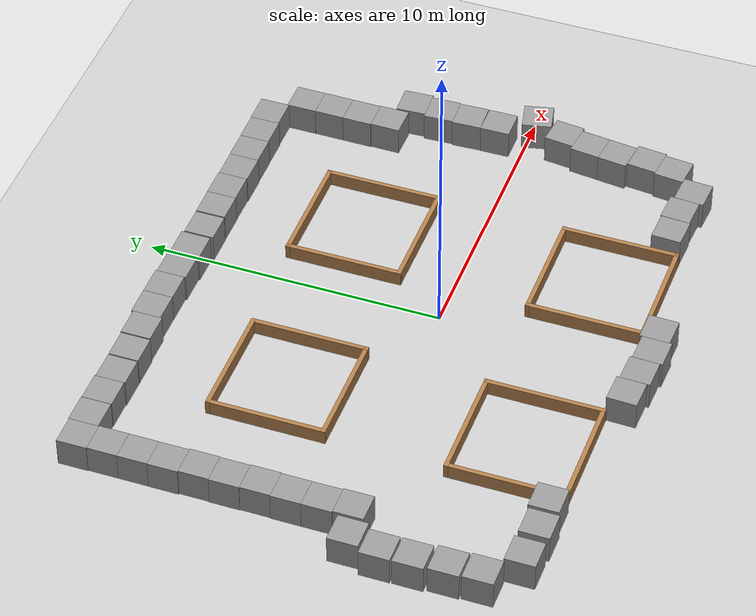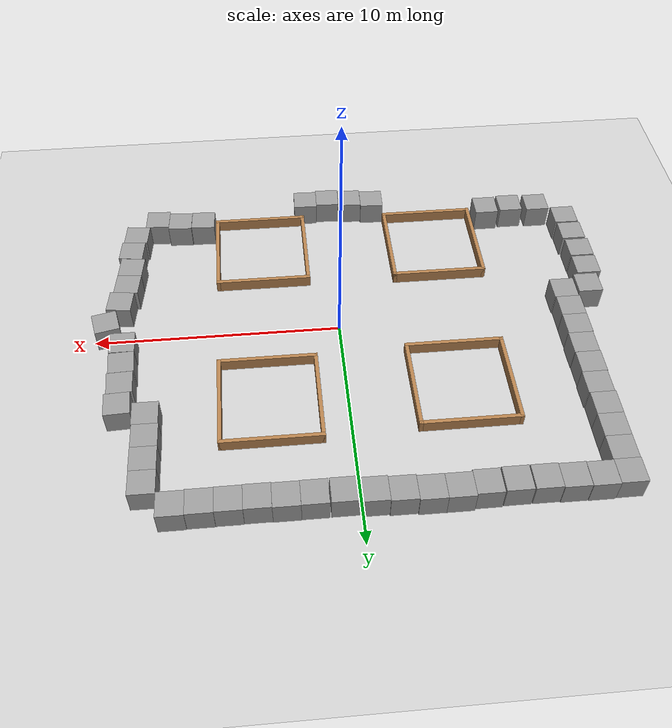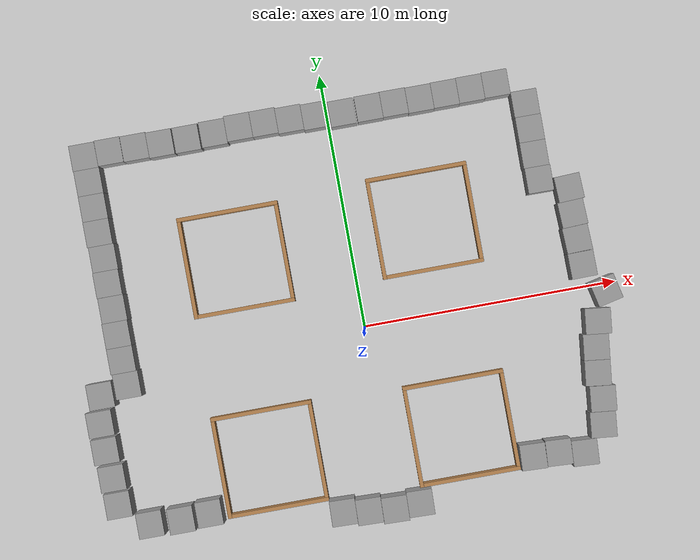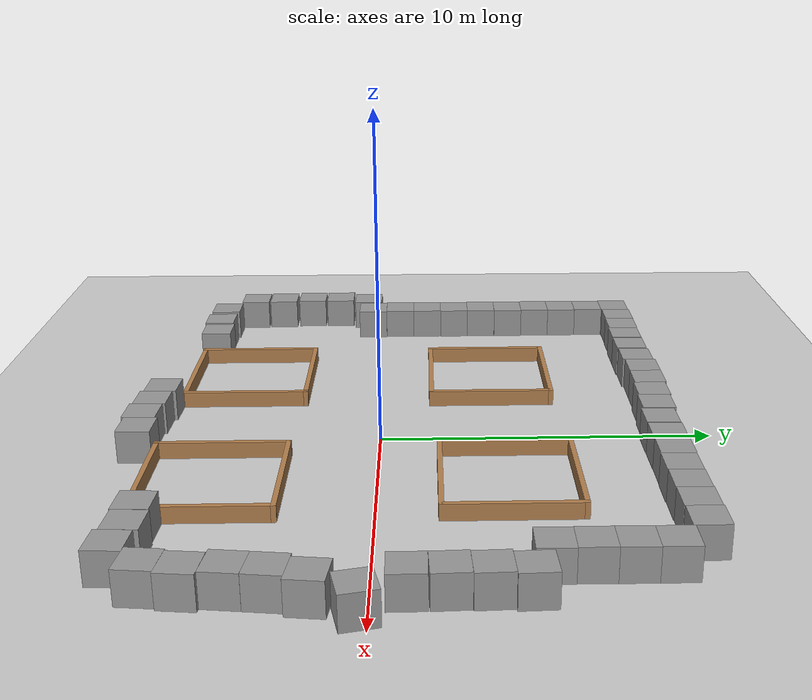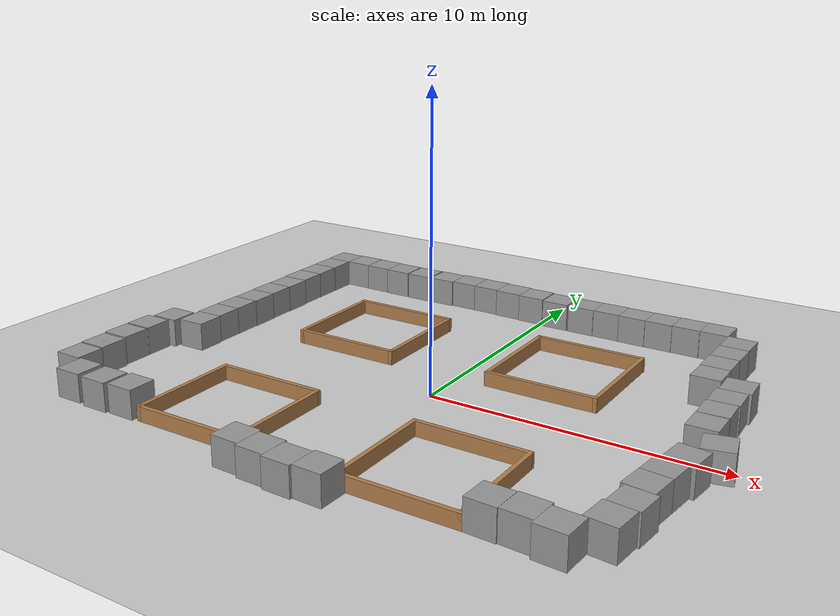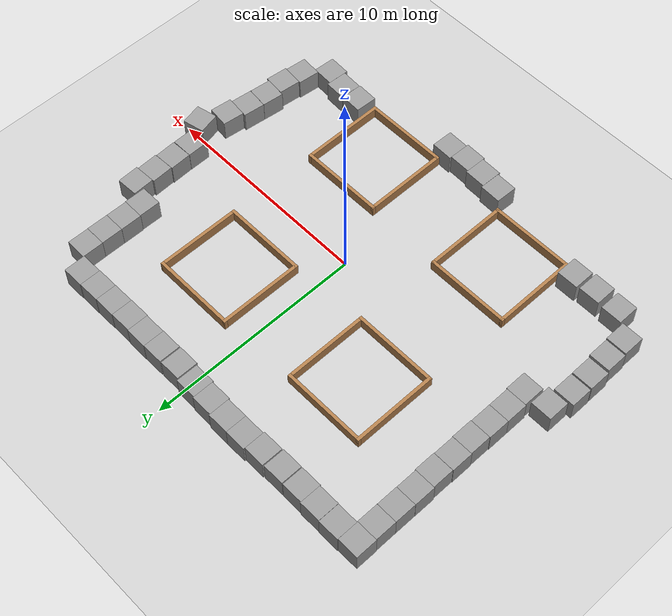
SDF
<sdf version="1.7">
 <world name="default">
  <light name="sun" type="directional">
   <pose>0 0 10 0 -0 0</pose>
   <diffuse>0.8 0.8 0.8 1</diffuse>
   <specular>0.2 0.2 0.2 1</specular>
   <attenuation>
    <range>1000</range>
    <constant>0.9</constant>
    <linear>0.01</linear>
    <quadratic>0.001</quadratic>
   </attenuation>
   <direction>-0.5 0.1 -0.9</direction>
   <spot><inner_angle>0</inner_angle><outer_angle>0</outer_angle><falloff>0</falloff></spot>
  </light>
  <model name="ground_plane">
   <static>1</static>
   <link name="link">
    <collision name="collision">
     <geometry><plane><normal>0 0 1</normal><size>100 100</size></plane></geometry>
     <surface>
      <contact><collide_bitmask>65535</collide_bitmask></contact>
      <friction><ode><mu>100</mu><mu2>50</mu2></ode></friction>
     </surface>
    </collision>
    <visual name="visual">
     <cast_shadows>0</cast_shadows>
     <geometry><plane><normal>0 0 1</normal><size>100 100</size></plane></geometry>
     <material>
      <script><uri>file://media/materials/scripts/gazebo.material</uri><name>Gazebo/Grey</name></script>
     </material>
    </visual>
   </link>
  </model>
  <gravity>0 0 -9.8</gravity>
  <magnetic_field>6e-06 2.3e-05 -4.2e-05</magnetic_field>
  <atmosphere type="adiabatic"/>
  <physics type="ode">
   <max_step_size>0.001</max_step_size>
   <real_time_factor>1</real_time_factor>
   <real_time_update_rate>1000</real_time_update_rate>
  </physics>
  <scene><ambient>0.4 0.4 0.4 1</ambient><background>0.7 0.7 0.7 1</background><shadows>1</shadows></scene>
  <spherical_coordinates>
   <surface_model>EARTH_WGS84</surface_model>
   <latitude_deg>0</latitude_deg>
   <longitude_deg>0</longitude_deg>
   <elevation>0</elevation>
   <heading_deg>0</heading_deg>
  </spherical_coordinates>
  <model name="turtlebot3_square">
   <pose>-4.49109 3.48064 0 0 -0 0</pose>
   <link name="Wall_0">
    <collision name="Wall_0_Collision">
     <geometry><box><size>4 0.15 0.5</size></box></geometry>
     <pose>0 0 0.25 0 -0 0</pose>
    </collision>
    <visual name="Wall_0_Visual">
     <pose>0 0 0.25 0 -0 0</pose>
     <geometry><box><size>4 0.15 0.5</size></box></geometry>
     <material>
      <script><uri>file://media/materials/scripts/gazebo.material</uri><name>Gazebo/Wood</name></script>
      <ambient>1 1 1 1</ambient>
     </material>
    </visual>
    <pose>0 1.925 0 0 -0 0</pose>
   </link>
   <link name="Wall_2">
    <collision name="Wall_2_Collision">
     <geometry><box><size>4 0.15 0.5</size></box></geometry>
     <pose>0 0 0.25 0 -0 0</pose>
    </collision>
    <visual name="Wall_2_Visual">
     <pose>0 0 0.25 0 -0 0</pose>
     <geometry><box><size>4 0.15 0.5</size></box></geometry>
     <material>
      <script><uri>file://media/materials/scripts/gazebo.material</uri><name>Gazebo/Wood</name></script>
      <ambient>1 1 1 1</ambient>
     </material>
    </visual>
    <pose>-1.925 0 0 0 0 -1.5708</pose>
   </link>
   <link name="Wall_3">
    <collision name="Wall_3_Collision">
     <geometry><box><size>4 0.15 0.5</size></box></geometry>
     <pose>0 0 0.25 0 -0 0</pose>
    </collision>
    <visual name="Wall_3_Visual">
     <pose>0 0 0.25 0 -0 0</pose>
     <geometry><box><size>4 0.15 0.5</size></box></geometry>
     <material>
      <script><uri>file://media/materials/scripts/gazebo.material</uri><name>Gazebo/Wood</name></script>
      <ambient>1 1 1 1</ambient>
     </material>
    </visual>
    <pose>0 -1.925 0 0 -0 0</pose>
   </link>
   <link name="Wall_4">
    <collision name="Wall_4_Collision">
     <geometry><box><size>4 0.15 0.5</size></box></geometry>
     <pose>0 0 0.25 0 -0 0</pose>
    </collision>
    <visual name="Wall_4_Visual">
     <pose>0 0 0.25 0 -0 0</pose>
     <geometry><box><size>4 0.15 0.5</size></box></geometry>
     <material>
      <script><uri>file://media/materials/scripts/gazebo.material</uri><name>Gazebo/Wood</name></script>
      <ambient>1 1 1 1</ambient>
     </material>
    </visual>
    <pose>1.925 0 0 0 -0 1.5708</pose>
   </link>
   <static>1</static>
  </model>
  <model name="turtlebot3_square_0">
   <pose>-4.58319 -4.41741 0 0 -0 0</pose>
   <link name="Wall_0">
    <collision name="Wall_0_Collision">
     <geometry><box><size>4 0.15 0.5</size></box></geometry>
     <pose>0 0 0.25 0 -0 0</pose>
    </collision>
    <visual name="Wall_0_Visual">
     <pose>0 0 0.25 0 -0 0</pose>
     <geometry><box><size>4 0.15 0.5</size></box></geometry>
     <material>
      <script><uri>file://media/materials/scripts/gazebo.material</uri><name>Gazebo/Wood</name></script>
      <ambient>1 1 1 1</ambient>
     </material>
    </visual>
    <pose>0 1.925 0 0 -0 0</pose>
   </link>
   <link name="Wall_2">
    <collision name="Wall_2_Collision">
     <geometry><box><size>4 0.15 0.5</size></box></geometry>
     <pose>0 0 0.25 0 -0 0</pose>
    </collision>
    <visual name="Wall_2_Visual">
     <pose>0 0 0.25 0 -0 0</pose>
     <geometry><box><size>4 0.15 0.5</size></box></geometry>
     <material>
      <script><uri>file://media/materials/scripts/gazebo.material</uri><name>Gazebo/Wood</name></script>
      <ambient>1 1 1 1</ambient>
     </material>
    </visual>
    <pose>-1.925 0 0 0 0 -1.5708</pose>
   </link>
   <link name="Wall_3">
    <collision name="Wall_3_Collision">
     <geometry><box><size>4 0.15 0.5</size></box></geometry>
     <pose>0 0 0.25 0 -0 0</pose>
    </collision>
    <visual name="Wall_3_Visual">
     <pose>0 0 0.25 0 -0 0</pose>
     <geometry><box><size>4 0.15 0.5</size></box></geometry>
     <material>
      <script><uri>file://media/materials/scripts/gazebo.material</uri><name>Gazebo/Wood</name></script>
      <ambient>1 1 1 1</ambient>
     </material>
    </visual>
    <pose>0 -1.925 0 0 -0 0</pose>
   </link>
   <link name="Wall_4">
    <collision name="Wall_4_Collision">
     <geometry><box><size>4 0.15 0.5</size></box></geometry>
     <pose>0 0 0.25 0 -0 0</pose>
    </collision>
    <visual name="Wall_4_Visual">
     <pose>0 0 0.25 0 -0 0</pose>
     <geometry><box><size>4 0.15 0.5</size></box></geometry>
     <material>
      <script><uri>file://media/materials/scripts/gazebo.material</uri><name>Gazebo/Wood</name></script>
      <ambient>1 1 1 1</ambient>
     </material>
    </visual>
    <pose>1.925 0 0 0 -0 1.5708</pose>
   </link>
   <static>1</static>
  </model>
  <model name="turtlebot3_square_1">
   <pose>3.00071 -4.56485 0 0 -0 0</pose>
   <link name="Wall_0">
    <collision name="Wall_0_Collision">
     <geometry><box><size>4 0.15 0.5</size></box></geometry>
     <pose>0 0 0.25 0 -0 0</pose>
    </collision>
    <visual name="Wall_0_Visual">
     <pose>0 0 0.25 0 -0 0</pose>
     <geometry><box><size>4 0.15 0.5</size></box></geometry>
     <material>
      <script><uri>file://media/materials/scripts/gazebo.material</uri><name>Gazebo/Wood</name></script>
      <ambient>1 1 1 1</ambient>
     </material>
    </visual>
    <pose>0 1.925 0 0 -0 0</pose>
   </link>
   <link name="Wall_2">
    <collision name="Wall_2_Collision">
     <geometry><box><size>4 0.15 0.5</size></box></geometry>
     <pose>0 0 0.25 0 -0 0</pose>
    </collision>
    <visual name="Wall_2_Visual">
     <pose>0 0 0.25 0 -0 0</pose>
     <geometry><box><size>4 0.15 0.5</size></box></geometry>
     <material>
      <script><uri>file://media/materials/scripts/gazebo.material</uri><name>Gazebo/Wood</name></script>
      <ambient>1 1 1 1</ambient>
     </material>
    </visual>
    <pose>-1.925 0 0 0 0 -1.5708</pose>
   </link>
   <link name="Wall_3">
    <collision name="Wall_3_Collision">
     <geometry><box><size>4 0.15 0.5</size></box></geometry>
     <pose>0 0 0.25 0 -0 0</pose>
    </collision>
    <visual name="Wall_3_Visual">
     <pose>0 0 0.25 0 -0 0</pose>
     <geometry><box><size>4 0.15 0.5</size></box></geometry>
     <material>
      <script><uri>file://media/materials/scripts/gazebo.material</uri><name>Gazebo/Wood</name></script>
      <ambient>1 1 1 1</ambient>
     </material>
    </visual>
    <pose>0 -1.925 0 0 -0 0</pose>
   </link>
   <link name="Wall_4">
    <collision name="Wall_4_Collision">
     <geometry><box><size>4 0.15 0.5</size></box></geometry>
     <pose>0 0 0.25 0 -0 0</pose>
    </collision>
    <visual name="Wall_4_Visual">
     <pose>0 0 0.25 0 -0 0</pose>
     <geometry><box><size>4 0.15 0.5</size></box></geometry>
     <material>
      <script><uri>file://media/materials/scripts/gazebo.material</uri><name>Gazebo/Wood</name></script>
      <ambient>1 1 1 1</ambient>
     </material>
    </visual>
    <pose>1.925 0 0 0 -0 1.5708</pose>
   </link>
   <static>1</static>
  </model>
  <model name="turtlebot3_square_2">
   <pose>3.03425 3.67945 0 0 -0 0</pose>
   <link name="Wall_0">
    <collision name="Wall_0_Collision">
     <geometry><box><size>4 0.15 0.5</size></box></geometry>
     <pose>0 0 0.25 0 -0 0</pose>
    </collision>
    <visual name="Wall_0_Visual">
     <pose>0 0 0.25 0 -0 0</pose>
     <geometry><box><size>4 0.15 0.5</size></box></geometry>
     <material>
      <script><uri>file://media/materials/scripts/gazebo.material</uri><name>Gazebo/Wood</name></script>
      <ambient>1 1 1 1</ambient>
     </material>
    </visual>
    <pose>0 1.925 0 0 -0 0</pose>
   </link>
   <link name="Wall_2">
    <collision name="Wall_2_Collision">
     <geometry><box><size>4 0.15 0.5</size></box></geometry>
     <pose>0 0 0.25 0 -0 0</pose>
    </collision>
    <visual name="Wall_2_Visual">
     <pose>0 0 0.25 0 -0 0</pose>
     <geometry><box><size>4 0.15 0.5</size></box></geometry>
     <material>
      <script><uri>file://media/materials/scripts/gazebo.material</uri><name>Gazebo/Wood</name></script>
      <ambient>1 1 1 1</ambient>
     </material>
    </visual>
    <pose>-1.925 0 0 0 0 -1.5708</pose>
   </link>
   <link name="Wall_3">
    <collision name="Wall_3_Collision">
     <geometry><box><size>4 0.15 0.5</size></box></geometry>
     <pose>0 0 0.25 0 -0 0</pose>
    </collision>
    <visual name="Wall_3_Visual">
     <pose>0 0 0.25 0 -0 0</pose>
     <geometry><box><size>4 0.15 0.5</size></box></geometry>
     <material>
      <script><uri>file://media/materials/scripts/gazebo.material</uri><name>Gazebo/Wood</name></script>
      <ambient>1 1 1 1</ambient>
     </material>
    </visual>
    <pose>0 -1.925 0 0 -0 0</pose>
   </link>
   <link name="Wall_4">
    <collision name="Wall_4_Collision">
     <geometry><box><size>4 0.15 0.5</size></box></geometry>
     <pose>0 0 0.25 0 -0 0</pose>
    </collision>
    <visual name="Wall_4_Visual">
     <pose>0 0 0.25 0 -0 0</pose>
     <geometry><box><size>4 0.15 0.5</size></box></geometry>
     <material>
      <script><uri>file://media/materials/scripts/gazebo.material</uri><name>Gazebo/Wood</name></script>
      <ambient>1 1 1 1</ambient>
     </material>
    </visual>
    <pose>1.925 0 0 0 -0 1.5708</pose>
   </link>
   <static>1</static>
  </model>
  <model name="unit_box">
   <pose>-9.45615 -0.553676 0.499995 -0 -1e-05 -0.000567</pose>
   <link name="link">
    <inertial>
     <mass>1</mass>
     <inertia>
      <ixx>0.166667</ixx>
      <ixy>0</ixy>
      <ixz>0</ixz>
      <iyy>0.166667</iyy>
      <iyz>0</iyz>
      <izz>0.166667</izz>
     </inertia>
    </inertial>
    <collision name="collision"><geometry><box><size>1 1 1</size></box></geometry></collision>
    <visual name="visual">
     <geometry><box><size>1 1 1</size></box></geometry>
     <material>
      <script><name>Gazebo/Grey</name><uri>file://media/materials/scripts/gazebo.material</uri></script>
     </material>
    </visual>
   </link>
  </model>
  <model name="unit_box_clone">
   <pose>-9.496 0.44669 0.499995 -1e-05 -0 0.000129</pose>
   <link name="link">
    <inertial>
     <mass>1</mass>
     <inertia>
      <ixx>0.166667</ixx>
      <ixy>0</ixy>
      <ixz>0</ixz>
      <iyy>0.166667</iyy>
      <iyz>0</iyz>
      <izz>0.166667</izz>
     </inertia>
    </inertial>
    <collision name="collision"><geometry><box><size>1 1 1</size></box></geometry></collision>
    <visual name="visual">
     <geometry><box><size>1 1 1</size></box></geometry>
     <material>
      <script><name>Gazebo/Grey</name><uri>file://media/materials/scripts/gazebo.material</uri></script>
     </material>
    </visual>
   </link>
  </model>
  <model name="unit_box_clone_0">
   <pose>-9.49586 1.44679 0.499995 1e-05 -0 0.000338</pose>
   <link name="link">
    <inertial>
     <mass>1</mass>
     <inertia>
      <ixx>0.166667</ixx>
      <ixy>0</ixy>
      <ixz>0</ixz>
      <iyy>0.166667</iyy>
      <iyz>0</iyz>
      <izz>0.166667</izz>
     </inertia>
    </inertial>
    <collision name="collision"><geometry><box><size>1 1 1</size></box></geometry></collision>
    <visual name="visual">
     <geometry><box><size>1 1 1</size></box></geometry>
     <material>
      <script><name>Gazebo/Grey</name><uri>file://media/materials/scripts/gazebo.material</uri></script>
     </material>
    </visual>
   </link>
  </model>
  <model name="unit_box_clone_1">
   <pose>-9.47583 2.44682 0.499995 1e-05 -0 0.000301</pose>
   <link name="link">
    <inertial>
     <mass>1</mass>
     <inertia>
      <ixx>0.166667</ixx>
      <ixy>0</ixy>
      <ixz>0</ixz>
      <iyy>0.166667</iyy>
      <iyz>0</iyz>
      <izz>0.166667</izz>
     </inertia>
    </inertial>
    <collision name="collision"><geometry><box><size>1 1 1</size></box></geometry></collision>
    <visual name="visual">
     <geometry><box><size>1 1 1</size></box></geometry>
     <material>
      <script><name>Gazebo/Grey</name><uri>file://media/materials/scripts/gazebo.material</uri></script>
     </material>
    </visual>
   </link>
  </model>
  <model name="unit_box_clone_2">
   <pose>-9.49419 3.44709 0.499995 -1e-05 0 0.000411</pose>
   <link name="link">
    <inertial>
     <mass>1</mass>
     <inertia>
      <ixx>0.166667</ixx>
      <ixy>0</ixy>
      <ixz>0</ixz>
      <iyy>0.166667</iyy>
      <iyz>0</iyz>
      <izz>0.166667</izz>
     </inertia>
    </inertial>
    <collision name="collision"><geometry><box><size>1 1 1</size></box></geometry></collision>
    <visual name="visual">
     <geometry><box><size>1 1 1</size></box></geometry>
     <material>
      <script><name>Gazebo/Grey</name><uri>file://media/materials/scripts/gazebo.material</uri></script>
     </material>
    </visual>
   </link>
  </model>
  <model name="unit_box_clone_3">
   <pose>-9.4758 4.44757 0.499995 -0 -1e-05 0.000716</pose>
   <link name="link">
    <inertial>
     <mass>1</mass>
     <inertia>
      <ixx>0.166667</ixx>
      <ixy>0</ixy>
      <ixz>0</ixz>
      <iyy>0.166667</iyy>
      <iyz>0</iyz>
      <izz>0.166667</izz>
     </inertia>
    </inertial>
    <collision name="collision"><geometry><box><size>1 1 1</size></box></geometry></collision>
    <visual name="visual">
     <geometry><box><size>1 1 1</size></box></geometry>
     <material>
      <script><name>Gazebo/Grey</name><uri>file://media/materials/scripts/gazebo.material</uri></script>
     </material>
    </visual>
   </link>
  </model>
  <model name="unit_box_clone_4">
   <pose>-9.51166 5.44755 0.499995 1e-05 0 0.000715</pose>
   <link name="link">
    <inertial>
     <mass>1</mass>
     <inertia>
      <ixx>0.166667</ixx>
      <ixy>0</ixy>
      <ixz>0</ixz>
      <iyy>0.166667</iyy>
      <iyz>0</iyz>
      <izz>0.166667</izz>
     </inertia>
    </inertial>
    <collision name="collision"><geometry><box><size>1 1 1</size></box></geometry></collision>
    <visual name="visual">
     <geometry><box><size>1 1 1</size></box></geometry>
     <material>
      <script><name>Gazebo/Grey</name><uri>file://media/materials/scripts/gazebo.material</uri></script>
     </material>
    </visual>
   </link>
  </model>
  <model name="unit_box_clone_5">
   <pose>-9.50754 6.44759 0.499995 -1e-05 0 0.000692</pose>
   <link name="link">
    <inertial>
     <mass>1</mass>
     <inertia>
      <ixx>0.166667</ixx>
      <ixy>0</ixy>
      <ixz>0</ixz>
      <iyy>0.166667</iyy>
      <iyz>0</iyz>
      <izz>0.166667</izz>
     </inertia>
    </inertial>
    <collision name="collision"><geometry><box><size>1 1 1</size></box></geometry></collision>
    <visual name="visual">
     <geometry><box><size>1 1 1</size></box></geometry>
     <material>
      <script><name>Gazebo/Grey</name><uri>file://media/materials/scripts/gazebo.material</uri></script>
     </material>
    </visual>
   </link>
  </model>
  <model name="unit_box_clone_6">
   <pose>-9.50749 7.44775 0.499995 1e-05 -0 0.001026</pose>
   <link name="link">
    <inertial>
     <mass>1</mass>
     <inertia>
      <ixx>0.166667</ixx>
      <ixy>0</ixy>
      <ixz>0</ixz>
      <iyy>0.166667</iyy>
      <iyz>0</iyz>
      <izz>0.166667</izz>
     </inertia>
    </inertial>
    <collision name="collision"><geometry><box><size>1 1 1</size></box></geometry></collision>
    <visual name="visual">
     <geometry><box><size>1 1 1</size></box></geometry>
     <material>
      <script><name>Gazebo/Grey</name><uri>file://media/materials/scripts/gazebo.material</uri></script>
     </material>
    </visual>
   </link>
  </model>
  <model name="unit_box_clone_7">
   <pose>-9.52681 8.44774 0.499995 1e-05 -0 0.001038</pose>
   <link name="link">
    <inertial>
     <mass>1</mass>
     <inertia>
      <ixx>0.166667</ixx>
      <ixy>0</ixy>
      <ixz>0</ixz>
      <iyy>0.166667</iyy>
      <iyz>0</iyz>
      <izz>0.166667</izz>
     </inertia>
    </inertial>
    <collision name="collision"><geometry><box><size>1 1 1</size></box></geometry></collision>
    <visual name="visual">
     <geometry><box><size>1 1 1</size></box></geometry>
     <material>
      <script><name>Gazebo/Grey</name><uri>file://media/materials/scripts/gazebo.material</uri></script>
     </material>
    </visual>
   </link>
  </model>
  <model name="unit_box_clone_8">
   <pose>-8.52642 8.47207 0.499995 1e-05 -0 0.000367</pose>
   <link name="link">
    <inertial>
     <mass>1</mass>
     <inertia>
      <ixx>0.166667</ixx>
      <ixy>0</ixy>
      <ixz>0</ixz>
      <iyy>0.166667</iyy>
      <iyz>0</iyz>
      <izz>0.166667</izz>
     </inertia>
    </inertial>
    <collision name="collision"><geometry><box><size>1 1 1</size></box></geometry></collision>
    <visual name="visual">
     <geometry><box><size>1 1 1</size></box></geometry>
     <material>
      <script><name>Gazebo/Grey</name><uri>file://media/materials/scripts/gazebo.material</uri></script>
     </material>
    </visual>
   </link>
  </model>
  <model name="unit_box_clone_9">
   <pose>-7.52028 8.45595 0.499995 1e-05 -0 -0.000139</pose>
   <link name="link">
    <inertial>
     <mass>1</mass>
     <inertia>
      <ixx>0.166667</ixx>
      <ixy>0</ixy>
      <ixz>0</ixz>
      <iyy>0.166667</iyy>
      <iyz>0</iyz>
      <izz>0.166667</izz>
     </inertia>
    </inertial>
    <collision name="collision"><geometry><box><size>1 1 1</size></box></geometry></collision>
    <visual name="visual">
     <geometry><box><size>1 1 1</size></box></geometry>
     <material>
      <script><name>Gazebo/Grey</name><uri>file://media/materials/scripts/gazebo.material</uri></script>
     </material>
    </visual>
   </link>
  </model>
  <model name="unit_box_clone_10">
   <pose>-6.52028 8.42385 0.499995 1e-05 -0 -0.000144</pose>
   <link name="link">
    <inertial>
     <mass>1</mass>
     <inertia>
      <ixx>0.166667</ixx>
      <ixy>0</ixy>
      <ixz>0</ixz>
      <iyy>0.166667</iyy>
      <iyz>0</iyz>
      <izz>0.166667</izz>
     </inertia>
    </inertial>
    <collision name="collision"><geometry><box><size>1 1 1</size></box></geometry></collision>
    <visual name="visual">
     <geometry><box><size>1 1 1</size></box></geometry>
     <material>
      <script><name>Gazebo/Grey</name><uri>file://media/materials/scripts/gazebo.material</uri></script>
     </material>
    </visual>
   </link>
  </model>
  <model name="unit_box_clone_11">
   <pose>-5.48236 8.42139 0.499995 1e-05 -0 0</pose>
   <link name="link">
    <inertial>
     <mass>1</mass>
     <inertia>
      <ixx>0.166667</ixx>
      <ixy>0</ixy>
      <ixz>0</ixz>
      <iyy>0.166667</iyy>
      <iyz>0</iyz>
      <izz>0.166667</izz>
     </inertia>
    </inertial>
    <collision name="collision"><geometry><box><size>1 1 1</size></box></geometry></collision>
    <visual name="visual">
     <geometry><box><size>1 1 1</size></box></geometry>
     <material>
      <script><name>Gazebo/Grey</name><uri>file://media/materials/scripts/gazebo.material</uri></script>
     </material>
    </visual>
   </link>
  </model>
  <model name="unit_box_clone_12">
   <pose>-4.43668 8.44976 0.499995 -1e-05 -0 -0.001523</pose>
   <link name="link">
    <inertial>
     <mass>1</mass>
     <inertia>
      <ixx>0.166667</ixx>
      <ixy>0</ixy>
      <ixz>0</ixz>
      <iyy>0.166667</iyy>
      <iyz>0</iyz>
      <izz>0.166667</izz>
     </inertia>
    </inertial>
    <collision name="collision"><geometry><box><size>1 1 1</size></box></geometry></collision>
    <visual name="visual">
     <geometry><box><size>1 1 1</size></box></geometry>
     <material>
      <script><name>Gazebo/Grey</name><uri>file://media/materials/scripts/gazebo.material</uri></script>
     </material>
    </visual>
   </link>
  </model>
  <model name="unit_box_clone_13">
   <pose>-3.43657 8.51041 0.499995 1e-05 -0 -0.001516</pose>
   <link name="link">
    <inertial>
     <mass>1</mass>
     <inertia>
      <ixx>0.166667</ixx>
      <ixy>0</ixy>
      <ixz>0</ixz>
      <iyy>0.166667</iyy>
      <iyz>0</iyz>
      <izz>0.166667</izz>
     </inertia>
    </inertial>
    <collision name="collision"><geometry><box><size>1 1 1</size></box></geometry></collision>
    <visual name="visual">
     <geometry><box><size>1 1 1</size></box></geometry>
     <material>
      <script><name>Gazebo/Grey</name><uri>file://media/materials/scripts/gazebo.material</uri></script>
     </material>
    </visual>
   </link>
  </model>
  <model name="unit_box_clone_14">
   <pose>-2.43657 8.50602 0.499995 -1e-05 -0 -0.001519</pose>
   <link name="link">
    <inertial>
     <mass>1</mass>
     <inertia>
      <ixx>0.166667</ixx>
      <ixy>0</ixy>
      <ixz>0</ixz>
      <iyy>0.166667</iyy>
      <iyz>0</iyz>
      <izz>0.166667</izz>
     </inertia>
    </inertial>
    <collision name="collision"><geometry><box><size>1 1 1</size></box></geometry></collision>
    <visual name="visual">
     <geometry><box><size>1 1 1</size></box></geometry>
     <material>
      <script><name>Gazebo/Grey</name><uri>file://media/materials/scripts/gazebo.material</uri></script>
     </material>
    </visual>
   </link>
  </model>
  <model name="unit_box_clone_15">
   <pose>-1.43664 8.45669 0.499995 1e-05 0 -0.001519</pose>
   <link name="link">
    <inertial>
     <mass>1</mass>
     <inertia>
      <ixx>0.166667</ixx>
      <ixy>0</ixy>
      <ixz>0</ixz>
      <iyy>0.166667</iyy>
      <iyz>0</iyz>
      <izz>0.166667</izz>
     </inertia>
    </inertial>
    <collision name="collision"><geometry><box><size>1 1 1</size></box></geometry></collision>
    <visual name="visual">
     <geometry><box><size>1 1 1</size></box></geometry>
     <material>
      <script><name>Gazebo/Grey</name><uri>file://media/materials/scripts/gazebo.material</uri></script>
     </material>
    </visual>
   </link>
  </model>
  <model name="unit_box_clone_16">
   <pose>-0.436696 8.41283 0.499995 -1e-05 -0 -0.001513</pose>
   <link name="link">
    <inertial>
     <mass>1</mass>
     <inertia>
      <ixx>0.166667</ixx>
      <ixy>0</ixy>
      <ixz>0</ixz>
      <iyy>0.166667</iyy>
      <iyz>0</iyz>
      <izz>0.166667</izz>
     </inertia>
    </inertial>
    <collision name="collision"><geometry><box><size>1 1 1</size></box></geometry></collision>
    <visual name="visual">
     <geometry><box><size>1 1 1</size></box></geometry>
     <material>
      <script><name>Gazebo/Grey</name><uri>file://media/materials/scripts/gazebo.material</uri></script>
     </material>
    </visual>
   </link>
  </model>
  <model name="unit_box_clone_17">
   <pose>0.611631 8.33821 0.499995 1e-05 -0 0</pose>
   <link name="link">
    <inertial>
     <mass>1</mass>
     <inertia>
      <ixx>0.166667</ixx>
      <ixy>0</ixy>
      <ixz>0</ixz>
      <iyy>0.166667</iyy>
      <iyz>0</iyz>
      <izz>0.166667</izz>
     </inertia>
    </inertial>
    <collision name="collision"><geometry><box><size>1 1 1</size></box></geometry></collision>
    <visual name="visual">
     <geometry><box><size>1 1 1</size></box></geometry>
     <material>
      <script><name>Gazebo/Grey</name><uri>file://media/materials/scripts/gazebo.material</uri></script>
     </material>
    </visual>
   </link>
  </model>
  <model name="unit_box_clone_18">
   <pose>1.66019 8.34708 0.499995 0 -1e-05 -0.001692</pose>
   <link name="link">
    <inertial>
     <mass>1</mass>
     <inertia>
      <ixx>0.166667</ixx>
      <ixy>0</ixy>
      <ixz>0</ixz>
      <iyy>0.166667</iyy>
      <iyz>0</iyz>
      <izz>0.166667</izz>
     </inertia>
    </inertial>
    <collision name="collision"><geometry><box><size>1 1 1</size></box></geometry></collision>
    <visual name="visual">
     <geometry><box><size>1 1 1</size></box></geometry>
     <material>
      <script><name>Gazebo/Grey</name><uri>file://media/materials/scripts/gazebo.material</uri></script>
     </material>
    </visual>
   </link>
  </model>
  <model name="unit_box_clone_19">
   <pose>2.66026 8.35628 0.499995 0 -1e-05 -0.001784</pose>
   <link name="link">
    <inertial>
     <mass>1</mass>
     <inertia>
      <ixx>0.166667</ixx>
      <ixy>0</ixy>
      <ixz>0</ixz>
      <iyy>0.166667</iyy>
      <iyz>0</iyz>
      <izz>0.166667</izz>
     </inertia>
    </inertial>
    <collision name="collision"><geometry><box><size>1 1 1</size></box></geometry></collision>
    <visual name="visual">
     <geometry><box><size>1 1 1</size></box></geometry>
     <material>
      <script><name>Gazebo/Grey</name><uri>file://media/materials/scripts/gazebo.material</uri></script>
     </material>
    </visual>
   </link>
  </model>
  <model name="unit_box_clone_20">
   <pose>3.66029 8.33738 0.499995 -1e-05 -0 -0.001875</pose>
   <link name="link">
    <inertial>
     <mass>1</mass>
     <inertia>
      <ixx>0.166667</ixx>
      <ixy>0</ixy>
      <ixz>0</ixz>
      <iyy>0.166667</iyy>
      <iyz>0</iyz>
      <izz>0.166667</izz>
     </inertia>
    </inertial>
    <collision name="collision"><geometry><box><size>1 1 1</size></box></geometry></collision>
    <visual name="visual">
     <geometry><box><size>1 1 1</size></box></geometry>
     <material>
      <script><name>Gazebo/Grey</name><uri>file://media/materials/scripts/gazebo.material</uri></script>
     </material>
    </visual>
   </link>
  </model>
  <model name="unit_box_clone_21">
   <pose>4.66032 8.35079 0.499995 1e-05 -0 -0.001877</pose>
   <link name="link">
    <inertial>
     <mass>1</mass>
     <inertia>
      <ixx>0.166667</ixx>
      <ixy>0</ixy>
      <ixz>0</ixz>
      <iyy>0.166667</iyy>
      <iyz>0</iyz>
      <izz>0.166667</izz>
     </inertia>
    </inertial>
    <collision name="collision"><geometry><box><size>1 1 1</size></box></geometry></collision>
    <visual name="visual">
     <geometry><box><size>1 1 1</size></box></geometry>
     <material>
      <script><name>Gazebo/Grey</name><uri>file://media/materials/scripts/gazebo.material</uri></script>
     </material>
    </visual>
   </link>
  </model>
  <model name="unit_box_clone_22">
   <pose>5.66036 8.36242 0.499995 -1e-05 -0 -0.001908</pose>
   <link name="link">
    <inertial>
     <mass>1</mass>
     <inertia>
      <ixx>0.166667</ixx>
      <ixy>0</ixy>
      <ixz>0</ixz>
      <iyy>0.166667</iyy>
      <iyz>0</iyz>
      <izz>0.166667</izz>
     </inertia>
    </inertial>
    <collision name="collision"><geometry><box><size>1 1 1</size></box></geometry></collision>
    <visual name="visual">
     <geometry><box><size>1 1 1</size></box></geometry>
     <material>
      <script><name>Gazebo/Grey</name><uri>file://media/materials/scripts/gazebo.material</uri></script>
     </material>
    </visual>
   </link>
  </model>
  <model name="unit_box_clone_23">
   <pose>6.66041 8.38163 0.499995 1e-05 -0 -0.001913</pose>
   <link name="link">
    <inertial>
     <mass>1</mass>
     <inertia>
      <ixx>0.166667</ixx>
      <ixy>0</ixy>
      <ixz>0</ixz>
      <iyy>0.166667</iyy>
      <iyz>0</iyz>
      <izz>0.166667</izz>
     </inertia>
    </inertial>
    <collision name="collision"><geometry><box><size>1 1 1</size></box></geometry></collision>
    <visual name="visual">
     <geometry><box><size>1 1 1</size></box></geometry>
     <material>
      <script><name>Gazebo/Grey</name><uri>file://media/materials/scripts/gazebo.material</uri></script>
     </material>
    </visual>
   </link>
  </model>
  <model name="unit_box_clone_24">
   <pose>7.65635 7.4339 0.499995 -1e-05 0 -0.006974</pose>
   <link name="link">
    <inertial>
     <mass>1</mass>
     <inertia>
      <ixx>0.166667</ixx>
      <ixy>0</ixy>
      <ixz>0</ixz>
      <iyy>0.166667</iyy>
      <iyz>0</iyz>
      <izz>0.166667</izz>
     </inertia>
    </inertial>
    <collision name="collision"><geometry><box><size>1 1 1</size></box></geometry></collision>
    <visual name="visual">
     <geometry><box><size>1 1 1</size></box></geometry>
     <material>
      <script><name>Gazebo/Grey</name><uri>file://media/materials/scripts/gazebo.material</uri></script>
     </material>
    </visual>
   </link>
  </model>
  <model name="unit_box_clone_25">
   <pose>7.65694 6.43382 0.499995 0 -1e-05 -0.006924</pose>
   <link name="link">
    <inertial>
     <mass>1</mass>
     <inertia>
      <ixx>0.166667</ixx>
      <ixy>0</ixy>
      <ixz>0</ixz>
      <iyy>0.166667</iyy>
      <iyz>0</iyz>
      <izz>0.166667</izz>
     </inertia>
    </inertial>
    <collision name="collision"><geometry><box><size>1 1 1</size></box></geometry></collision>
    <visual name="visual">
     <geometry><box><size>1 1 1</size></box></geometry>
     <material>
      <script><name>Gazebo/Grey</name><uri>file://media/materials/scripts/gazebo.material</uri></script>
     </material>
    </visual>
   </link>
  </model>
  <model name="unit_box_clone_26">
   <pose>7.64818 5.43385 0.5 0 0 -0.006924</pose>
   <link name="link">
    <inertial>
     <mass>1</mass>
     <inertia>
      <ixx>0.166667</ixx>
      <ixy>0</ixy>
      <ixz>0</ixz>
      <iyy>0.166667</iyy>
      <iyz>0</iyz>
      <izz>0.166667</izz>
     </inertia>
    </inertial>
    <collision name="collision"><geometry><box><size>1 1 1</size></box></geometry></collision>
    <visual name="visual">
     <geometry><box><size>1 1 1</size></box></geometry>
     <material>
      <script><name>Gazebo/Grey</name><uri>file://media/materials/scripts/gazebo.material</uri></script>
     </material>
    </visual>
   </link>
  </model>
  <model name="unit_box_0">
   <pose>-2.09652 -6.89502 0.499995 0 -1e-05 -0.029689</pose>
   <link name="link">
    <inertial>
     <mass>1</mass>
     <inertia>
      <ixx>0.166667</ixx>
      <ixy>0</ixy>
      <ixz>0</ixz>
      <iyy>0.166667</iyy>
      <iyz>0</iyz>
      <izz>0.166667</izz>
     </inertia>
    </inertial>
    <collision name="collision"><geometry><box><size>1 1 1</size></box></geometry></collision>
    <visual name="visual">
     <geometry><box><size>1 1 1</size></box></geometry>
     <material>
      <script><name>Gazebo/Grey</name><uri>file://media/materials/scripts/gazebo.material</uri></script>
     </material>
    </visual>
   </link>
  </model>
  <model name="unit_box_1">
   <pose>-1.09862 -7.02297 0.499995 -1e-05 0 -0.027524</pose>
   <link name="link">
    <inertial>
     <mass>1</mass>
     <inertia>
      <ixx>0.166667</ixx>
      <ixy>0</ixy>
      <ixz>0</ixz>
      <iyy>0.166667</iyy>
      <iyz>0</iyz>
      <izz>0.166667</izz>
     </inertia>
    </inertial>
    <collision name="collision"><geometry><box><size>1 1 1</size></box></geometry></collision>
    <visual name="visual">
     <geometry><box><size>1 1 1</size></box></geometry>
     <material>
      <script><name>Gazebo/Grey</name><uri>file://media/materials/scripts/gazebo.material</uri></script>
     </material>
    </visual>
   </link>
  </model>
  <model name="unit_box_2">
   <pose>-0.100697 -7.12922 0.499995 1e-05 -0 -0.027671</pose>
   <link name="link">
    <inertial>
     <mass>1</mass>
     <inertia>
      <ixx>0.166667</ixx>
      <ixy>0</ixy>
      <ixz>0</ixz>
      <iyy>0.166667</iyy>
      <iyz>0</iyz>
      <izz>0.166667</izz>
     </inertia>
    </inertial>
    <collision name="collision"><geometry><box><size>1 1 1</size></box></geometry></collision>
    <visual name="visual">
     <geometry><box><size>1 1 1</size></box></geometry>
     <material>
      <script><name>Gazebo/Grey</name><uri>file://media/materials/scripts/gazebo.material</uri></script>
     </material>
    </visual>
   </link>
  </model>
  <model name="unit_box_3">
   <pose>0.901436 -7.0694 0.499995 1e-05 -0 -0.027607</pose>
   <link name="link">
    <inertial>
     <mass>1</mass>
     <inertia>
      <ixx>0.166667</ixx>
      <ixy>0</ixy>
      <ixz>0</ixz>
      <iyy>0.166667</iyy>
      <iyz>0</iyz>
      <izz>0.166667</izz>
     </inertia>
    </inertial>
    <collision name="collision"><geometry><box><size>1 1 1</size></box></geometry></collision>
    <visual name="visual">
     <geometry><box><size>1 1 1</size></box></geometry>
     <material>
      <script><name>Gazebo/Grey</name><uri>file://media/materials/scripts/gazebo.material</uri></script>
     </material>
    </visual>
   </link>
  </model>
  <model name="unit_box_4_clone_3">
   <pose>5.52223 -6.08136 0.499995 1e-05 -0 -0.043982</pose>
   <link name="link">
    <inertial>
     <mass>1</mass>
     <inertia>
      <ixx>0.166667</ixx>
      <ixy>0</ixy>
      <ixz>0</ixz>
      <iyy>0.166667</iyy>
      <iyz>0</iyz>
      <izz>0.166667</izz>
     </inertia>
    </inertial>
    <collision name="collision"><geometry><box><size>1 1 1</size></box></geometry></collision>
    <visual name="visual">
     <geometry><box><size>1 1 1</size></box></geometry>
     <material>
      <script><name>Gazebo/Grey</name><uri>file://media/materials/scripts/gazebo.material</uri></script>
     </material>
    </visual>
   </link>
  </model>
  <model name="unit_box_4_clone_4">
   <pose>6.52813 -6.09827 0.499995 0 -1e-05 -0.055178</pose>
   <link name="link">
    <inertial>
     <mass>1</mass>
     <inertia>
      <ixx>0.166667</ixx>
      <ixy>0</ixy>
      <ixz>0</ixz>
      <iyy>0.166667</iyy>
      <iyz>0</iyz>
      <izz>0.166667</izz>
     </inertia>
    </inertial>
    <collision name="collision"><geometry><box><size>1 1 1</size></box></geometry></collision>
    <visual name="visual">
     <geometry><box><size>1 1 1</size></box></geometry>
     <material>
      <script><name>Gazebo/Grey</name><uri>file://media/materials/scripts/gazebo.material</uri></script>
     </material>
    </visual>
   </link>
  </model>
  <model name="unit_box_4_clone_5">
   <pose>7.52078 -6.28019 0.5 0 0 -0.058169</pose>
   <link name="link">
    <inertial>
     <mass>1</mass>
     <inertia>
      <ixx>0.166667</ixx>
      <ixy>0</ixy>
      <ixz>0</ixz>
      <iyy>0.166667</iyy>
      <iyz>0</iyz>
      <izz>0.166667</izz>
     </inertia>
    </inertial>
    <collision name="collision"><geometry><box><size>1 1 1</size></box></geometry></collision>
    <visual name="visual">
     <geometry><box><size>1 1 1</size></box></geometry>
     <material>
      <script><name>Gazebo/Grey</name><uri>file://media/materials/scripts/gazebo.material</uri></script>
     </material>
    </visual>
   </link>
  </model>
  <model name="unit_box_4_clone_6">
   <pose>8.40689 -5.34392 0.499995 0 1e-05 -0.101388</pose>
   <link name="link">
    <inertial>
     <mass>1</mass>
     <inertia>
      <ixx>0.166667</ixx>
      <ixy>0</ixy>
      <ixz>0</ixz>
      <iyy>0.166667</iyy>
      <iyz>0</iyz>
      <izz>0.166667</izz>
     </inertia>
    </inertial>
    <collision name="collision"><geometry><box><size>1 1 1</size></box></geometry></collision>
    <visual name="visual">
     <geometry><box><size>1 1 1</size></box></geometry>
     <material>
      <script><name>Gazebo/Grey</name><uri>file://media/materials/scripts/gazebo.material</uri></script>
     </material>
    </visual>
   </link>
  </model>
  <model name="unit_box_4_clone_7">
   <pose>8.5774 -4.35521 0.5 0 0 -0.103123</pose>
   <link name="link">
    <inertial>
     <mass>1</mass>
     <inertia>
      <ixx>0.166667</ixx>
      <ixy>0</ixy>
      <ixz>0</ixz>
      <iyy>0.166667</iyy>
      <iyz>0</iyz>
      <izz>0.166667</izz>
     </inertia>
    </inertial>
    <collision name="collision"><geometry><box><size>1 1 1</size></box></geometry></collision>
    <visual name="visual">
     <geometry><box><size>1 1 1</size></box></geometry>
     <material>
      <script><name>Gazebo/Grey</name><uri>file://media/materials/scripts/gazebo.material</uri></script>
     </material>
    </visual>
   </link>
  </model>
  <model name="unit_box_4_clone_8">
   <pose>8.55356 -3.34083 0.5 0 0 -0.116278</pose>
   <link name="link">
    <inertial>
     <mass>1</mass>
     <inertia>
      <ixx>0.166667</ixx>
      <ixy>0</ixy>
      <ixz>0</ixz>
      <iyy>0.166667</iyy>
      <iyz>0</iyz>
      <izz>0.166667</izz>
     </inertia>
    </inertial>
    <collision name="collision"><geometry><box><size>1 1 1</size></box></geometry></collision>
    <visual name="visual">
     <geometry><box><size>1 1 1</size></box></geometry>
     <material>
      <script><name>Gazebo/Grey</name><uri>file://media/materials/scripts/gazebo.material</uri></script>
     </material>
    </visual>
   </link>
  </model>
  <model name="unit_box_4_clone_9">
   <pose>8.67133 -2.34641 0.5 -0 -0 -0.115942</pose>
   <link name="link">
    <inertial>
     <mass>1</mass>
     <inertia>
      <ixx>0.166667</ixx>
      <ixy>0</ixy>
      <ixz>0</ixz>
      <iyy>0.166667</iyy>
      <iyz>0</iyz>
      <izz>0.166667</izz>
     </inertia>
    </inertial>
    <collision name="collision"><geometry><box><size>1 1 1</size></box></geometry></collision>
    <visual name="visual">
     <geometry><box><size>1 1 1</size></box></geometry>
     <material>
      <script><name>Gazebo/Grey</name><uri>file://media/materials/scripts/gazebo.material</uri></script>
     </material>
    </visual>
   </link>
  </model>
  <model name="unit_box_4_clone_10">
   <pose>8.9195 -1.36854 0.5 -0 -0 -0.115977</pose>
   <link name="link">
    <inertial>
     <mass>1</mass>
     <inertia>
      <ixx>0.166667</ixx>
      <ixy>0</ixy>
      <ixz>0</ixz>
      <iyy>0.166667</iyy>
      <iyz>0</iyz>
      <izz>0.166667</izz>
     </inertia>
    </inertial>
    <collision name="collision"><geometry><box><size>1 1 1</size></box></geometry></collision>
    <visual name="visual">
     <geometry><box><size>1 1 1</size></box></geometry>
     <material>
      <script><name>Gazebo/Grey</name><uri>file://media/materials/scripts/gazebo.material</uri></script>
     </material>
    </visual>
   </link>
  </model>
  <model name="unit_box_4_clone_11">
   <pose>9.44201 -0.255049 0.5 0 -0 0.219827</pose>
   <link name="link">
    <inertial>
     <mass>1</mass>
     <inertia>
      <ixx>0.166667</ixx>
      <ixy>0</ixy>
      <ixz>0</ixz>
      <iyy>0.166667</iyy>
      <iyz>0</iyz>
      <izz>0.166667</izz>
     </inertia>
    </inertial>
    <collision name="collision"><geometry><box><size>1 1 1</size></box></geometry></collision>
    <visual name="visual">
     <geometry><box><size>1 1 1</size></box></geometry>
     <material>
      <script><name>Gazebo/Grey</name><uri>file://media/materials/scripts/gazebo.material</uri></script>
     </material>
    </visual>
   </link>
  </model>
  <model name="unit_box_4_clone_12">
   <pose>8.71579 0.888253 0.499995 1e-05 -0 0.011244</pose>
   <link name="link">
    <inertial>
     <mass>1</mass>
     <inertia>
      <ixx>0.166667</ixx>
      <ixy>0</ixy>
      <ixz>0</ixz>
      <iyy>0.166667</iyy>
      <iyz>0</iyz>
      <izz>0.166667</izz>
     </inertia>
    </inertial>
    <collision name="collision"><geometry><box><size>1 1 1</size></box></geometry></collision>
    <visual name="visual">
     <geometry><box><size>1 1 1</size></box></geometry>
     <material>
      <script><name>Gazebo/Grey</name><uri>file://media/materials/scripts/gazebo.material</uri></script>
     </material>
    </visual>
   </link>
  </model>
  <model name="unit_box_4_clone_13">
   <pose>8.69663 1.90326 0.499995 1e-05 -0 0.042009</pose>
   <link name="link">
    <inertial>
     <mass>1</mass>
     <inertia>
      <ixx>0.166667</ixx>
      <ixy>0</ixy>
      <ixz>0</ixz>
      <iyy>0.166667</iyy>
      <iyz>0</iyz>
      <izz>0.166667</izz>
     </inertia>
    </inertial>
    <collision name="collision"><geometry><box><size>1 1 1</size></box></geometry></collision>
    <visual name="visual">
     <geometry><box><size>1 1 1</size></box></geometry>
     <material>
      <script><name>Gazebo/Grey</name><uri>file://media/materials/scripts/gazebo.material</uri></script>
     </material>
    </visual>
   </link>
  </model>
  <model name="unit_box_4_clone_14">
   <pose>8.69474 2.90496 0.499995 -1e-05 -0 0.043784</pose>
   <link name="link">
    <inertial>
     <mass>1</mass>
     <inertia>
      <ixx>0.166667</ixx>
      <ixy>0</ixy>
      <ixz>0</ixz>
      <iyy>0.166667</iyy>
      <iyz>0</iyz>
      <izz>0.166667</izz>
     </inertia>
    </inertial>
    <collision name="collision"><geometry><box><size>1 1 1</size></box></geometry></collision>
    <visual name="visual">
     <geometry><box><size>1 1 1</size></box></geometry>
     <material>
      <script><name>Gazebo/Grey</name><uri>file://media/materials/scripts/gazebo.material</uri></script>
     </material>
    </visual>
   </link>
  </model>
  <model name="unit_box_4_clone_15">
   <pose>8.73857 3.90794 0.499995 1e-05 -0 0.043548</pose>
   <link name="link">
    <inertial>
     <mass>1</mass>
     <inertia>
      <ixx>0.166667</ixx>
      <ixy>0</ixy>
      <ixz>0</ixz>
      <iyy>0.166667</iyy>
      <iyz>0</iyz>
      <izz>0.166667</izz>
     </inertia>
    </inertial>
    <collision name="collision"><geometry><box><size>1 1 1</size></box></geometry></collision>
    <visual name="visual">
     <geometry><box><size>1 1 1</size></box></geometry>
     <material>
      <script><name>Gazebo/Grey</name><uri>file://media/materials/scripts/gazebo.material</uri></script>
     </material>
    </visual>
   </link>
  </model>
  <model name="unit_box_4_clone_16">
   <pose>7.66329 4.4337 0.499995 1e-05 -0 -0.006904</pose>
   <link name="link">
    <inertial>
     <mass>1</mass>
     <inertia>
      <ixx>0.166667</ixx>
      <ixy>0</ixy>
      <ixz>0</ixz>
      <iyy>0.166667</iyy>
      <iyz>0</iyz>
      <izz>0.166667</izz>
     </inertia>
    </inertial>
    <collision name="collision"><geometry><box><size>1 1 1</size></box></geometry></collision>
    <visual name="visual">
     <geometry><box><size>1 1 1</size></box></geometry>
     <material>
      <script><name>Gazebo/Grey</name><uri>file://media/materials/scripts/gazebo.material</uri></script>
     </material>
    </visual>
   </link>
  </model>
  <model name="unit_box_4_clone_1">
   <pose>-7.22132 -6.00004 0.499995 -1e-05 -0 -0.000469</pose>
   <link name="link">
    <inertial>
     <mass>1</mass>
     <inertia>
      <ixx>0.166667</ixx>
      <ixy>0</ixy>
      <ixz>0</ixz>
      <iyy>0.166667</iyy>
      <iyz>0</iyz>
      <izz>0.166667</izz>
     </inertia>
    </inertial>
    <collision name="collision"><geometry><box><size>1 1 1</size></box></geometry></collision>
    <visual name="visual">
     <geometry><box><size>1 1 1</size></box></geometry>
     <material>
      <script><name>Gazebo/Grey</name><uri>file://media/materials/scripts/gazebo.material</uri></script>
     </material>
    </visual>
   </link>
  </model>
  <model name="unit_box_4_clone_2">
   <pose>-8.33108 -6.05835 0.499995 0 1e-05 -0.000469</pose>
   <link name="link">
    <inertial>
     <mass>1</mass>
     <inertia>
      <ixx>0.166667</ixx>
      <ixy>0</ixy>
      <ixz>0</ixz>
      <iyy>0.166667</iyy>
      <iyz>0</iyz>
      <izz>0.166667</izz>
     </inertia>
    </inertial>
    <collision name="collision"><geometry><box><size>1 1 1</size></box></geometry></collision>
    <visual name="visual">
     <geometry><box><size>1 1 1</size></box></geometry>
     <material>
      <script><name>Gazebo/Grey</name><uri>file://media/materials/scripts/gazebo.material</uri></script>
     </material>
    </visual>
   </link>
  </model>
  <model name="unit_box_4_clone_17">
   <pose>-9.54096 -6.00914 0.499995 -1e-05 -0 -0.000469</pose>
   <link name="link">
    <inertial>
     <mass>1</mass>
     <inertia>
      <ixx>0.166667</ixx>
      <ixy>0</ixy>
      <ixz>0</ixz>
      <iyy>0.166667</iyy>
      <iyz>0</iyz>
      <izz>0.166667</izz>
     </inertia>
    </inertial>
    <collision name="collision"><geometry><box><size>1 1 1</size></box></geometry></collision>
    <visual name="visual">
     <geometry><box><size>1 1 1</size></box></geometry>
     <material>
      <script><name>Gazebo/Grey</name><uri>file://media/materials/scripts/gazebo.material</uri></script>
     </material>
    </visual>
   </link>
  </model>
  <model name="unit_box_4_clone_17_clone">
   <pose>-10.6278 -5.05648 0.499995 0 1e-05 -0.000469</pose>
   <link name="link">
    <inertial>
     <mass>1</mass>
     <inertia>
      <ixx>0.166667</ixx>
      <ixy>0</ixy>
      <ixz>0</ixz>
      <iyy>0.166667</iyy>
      <iyz>0</iyz>
      <izz>0.166667</izz>
     </inertia>
    </inertial>
    <collision name="collision"><geometry><box><size>1 1 1</size></box></geometry></collision>
    <visual name="visual">
     <geometry><box><size>1 1 1</size></box></geometry>
     <material>
      <script><name>Gazebo/Grey</name><uri>file://media/materials/scripts/gazebo.material</uri></script>
     </material>
    </visual>
   </link>
  </model>
  <model name="unit_box_4_clone_17_clone_0">
   <pose>-10.6699 -3.9979 0.499995 1e-05 -0 -0.000469</pose>
   <link name="link">
    <inertial>
     <mass>1</mass>
     <inertia>
      <ixx>0.166667</ixx>
      <ixy>0</ixy>
      <ixz>0</ixz>
      <iyy>0.166667</iyy>
      <iyz>0</iyz>
      <izz>0.166667</izz>
     </inertia>
    </inertial>
    <collision name="collision"><geometry><box><size>1 1 1</size></box></geometry></collision>
    <visual name="visual">
     <geometry><box><size>1 1 1</size></box></geometry>
     <material>
      <script><name>Gazebo/Grey</name><uri>file://media/materials/scripts/gazebo.material</uri></script>
     </material>
    </visual>
   </link>
  </model>
  <model name="unit_box_4_clone_17_clone_1">
   <pose>-10.7416 -2.90666 0.499995 0 1e-05 -0.000469</pose>
   <link name="link">
    <inertial>
     <mass>1</mass>
     <inertia>
      <ixx>0.166667</ixx>
      <ixy>0</ixy>
      <ixz>0</ixz>
      <iyy>0.166667</iyy>
      <iyz>0</iyz>
      <izz>0.166667</izz>
     </inertia>
    </inertial>
    <collision name="collision"><geometry><box><size>1 1 1</size></box></geometry></collision>
    <visual name="visual">
     <geometry><box><size>1 1 1</size></box></geometry>
     <material>
      <script><name>Gazebo/Grey</name><uri>file://media/materials/scripts/gazebo.material</uri></script>
     </material>
    </visual>
   </link>
  </model>
  <model name="unit_box_4_clone_17_clone_2">
   <pose>-10.7524 -1.84871 0.499995 1e-05 -0 -0.000469</pose>
   <link name="link">
    <inertial>
     <mass>1</mass>
     <inertia>
      <ixx>0.166667</ixx>
      <ixy>0</ixy>
      <ixz>0</ixz>
      <iyy>0.166667</iyy>
      <iyz>0</iyz>
      <izz>0.166667</izz>
     </inertia>
    </inertial>
    <collision name="collision"><geometry><box><size>1 1 1</size></box></geometry></collision>
    <visual name="visual">
     <geometry><box><size>1 1 1</size></box></geometry>
     <material>
      <script><name>Gazebo/Grey</name><uri>file://media/materials/scripts/gazebo.material</uri></script>
     </material>
    </visual>
   </link>
  </model>
  <model name="unit_box_4_clone_17_clone_3">
   <pose>-10.5414 -0.769303 0.499995 0 1e-05 -0.000469</pose>
   <link name="link">
    <inertial>
     <mass>1</mass>
     <inertia>
      <ixx>0.166667</ixx>
      <ixy>0</ixy>
      <ixz>0</ixz>
      <iyy>0.166667</iyy>
      <iyz>0</iyz>
      <izz>0.166667</izz>
     </inertia>
    </inertial>
    <collision name="collision"><geometry><box><size>1 1 1</size></box></geometry></collision>
    <visual name="visual">
     <geometry><box><size>1 1 1</size></box></geometry>
     <material>
      <script><name>Gazebo/Grey</name><uri>file://media/materials/scripts/gazebo.material</uri></script>
     </material>
    </visual>
   </link>
  </model>
 </world>
</sdf>
